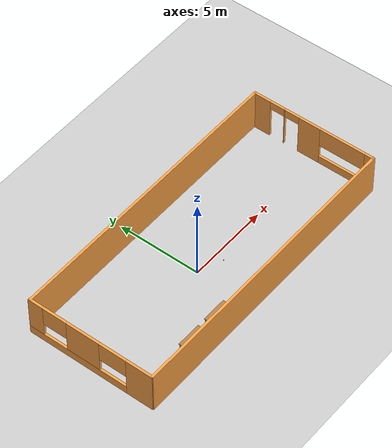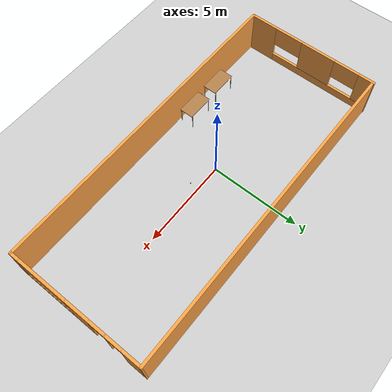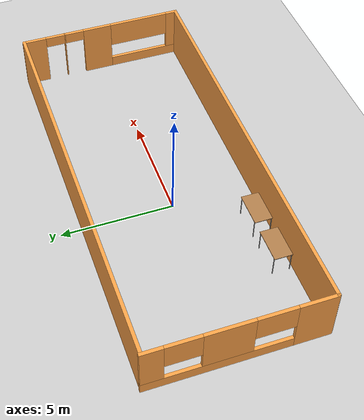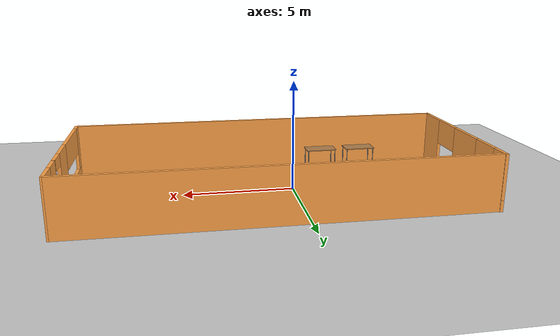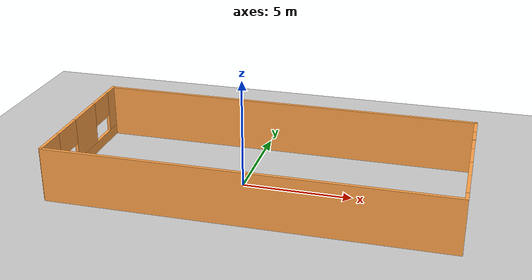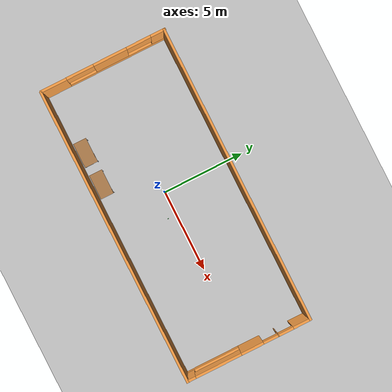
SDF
<sdf version="1.7">
 <world name="default">
  <light name="sun" type="directional">
   <pose>0 0 10 0 -0 0</pose>
   <diffuse>0.8 0.8 0.8 1</diffuse>
   <specular>0.1 0.1 0.1 1</specular>
   <attenuation>
    <range>1000</range>
    <constant>0.9</constant>
    <linear>0.01</linear>
    <quadratic>0.001</quadratic>
   </attenuation>
   <direction>-0.5 0.5 -1</direction>
   <spot><inner_angle>0</inner_angle><outer_angle>0</outer_angle><falloff>0</falloff></spot>
  </light>
  <model name="ground_plane">
   <static>1</static>
   <link name="link">
    <collision name="collision">
     <geometry><plane><normal>0 0 1</normal><size>100 100</size></plane></geometry>
     <surface><friction><ode><mu>100</mu><mu2>50</mu2></ode></friction></surface>
    </collision>
    <visual name="visual">
     <cast_shadows>0</cast_shadows>
     <geometry><plane><normal>0 0 1</normal><size>100 100</size></plane></geometry>
     <material>
      <script><uri>file://media/materials/scripts/gazebo.material</uri><name>Gazebo/Grey</name></script>
     </material>
    </visual>
   </link>
  </model>
  <gravity>0 0 -9.8</gravity>
  <magnetic_field>6e-06 2.3e-05 -4.2e-05</magnetic_field>
  <atmosphere type="adiabatic"/>
  <physics name="default_physics" default="0" type="ode">
   <max_step_size>0.001</max_step_size>
   <real_time_factor>1</real_time_factor>
   <real_time_update_rate>1000</real_time_update_rate>
  </physics>
  <scene><ambient>0.4 0.4 0.4 1</ambient><background>0.7 0.7 0.7 1</background><shadows>1</shadows></scene>
  <spherical_coordinates>
   <surface_model>EARTH_WGS84</surface_model>
   <latitude_deg>0</latitude_deg>
   <longitude_deg>0</longitude_deg>
   <elevation>0</elevation>
   <heading_deg>0</heading_deg>
  </spherical_coordinates>
  <audio><device>default</device></audio>
  <model name="green_ball">
   <link name="link">
    <inertial>
     <mass>0.02</mass>
     <inertia><ixx>7.2e-06</ixx><ixy>0</ixy><ixz>0</ixz><iyy>7.2e-06</iyy><iyz>0</iyz><izz>7.2e-06</izz></inertia>
    </inertial>
    <visual name="visual">
     <geometry><sphere><radius>0.03</radius></sphere></geometry>
     <material>
      <script><name>Gazebo/Green</name><uri>file://media/materials/scripts/gazebo.material</uri></script>
      <shader type="pixel"><normal_map>__default__</normal_map></shader>
      <ambient>0 1 0 1</ambient>
      <diffuse>0 1 0 1</diffuse>
      <specular>0.1 0.1 0.1 1</specular>
      <emissive>0 0 0 1</emissive>
     </material>
    </visual>
    <collision name="collision">
     <geometry><sphere><radius>0.03</radius></sphere></geometry>
     <surface>
      <friction>
       <ode><mu>1</mu><mu2>1</mu2><fdir1>0 0 0</fdir1><slip1>0</slip1><slip2>0</slip2></ode>
       <torsional>
        <coefficient>1</coefficient>
        <patch_radius>0</patch_radius>
        <surface_radius>0</surface_radius>
        <use_patch_radius>1</use_patch_radius>
        <ode><slip>0</slip></ode>
       </torsional>
      </friction>
      <bounce><restitution_coefficient>0</restitution_coefficient><threshold>1e+06</threshold></bounce>
      <contact>
       <collide_without_contact>0</collide_without_contact>
       <collide_without_contact_bitmask>1</collide_without_contact_bitmask>
       <collide_bitmask>1</collide_bitmask>
       <ode>
        <soft_cfm>0</soft_cfm>
        <soft_erp>0.2</soft_erp>
        <kp>1e+13</kp>
        <kd>1</kd>
        <max_vel>0.01</max_vel>
        <min_depth>0</min_depth>
       </ode>
       <bullet>
        <split_impulse>1</split_impulse>
        <split_impulse_penetration_threshold>-0.01</split_impulse_penetration_threshold>
        <soft_cfm>0</soft_cfm>
        <soft_erp>0.2</soft_erp>
        <kp>1e+13</kp>
        <kd>1</kd>
       </bullet>
      </contact>
     </surface>
    </collision>
   </link>
   <static>0</static>
   <pose>1.46921 -0.509175 0.03 0 -0 0</pose>
  </model>
  <model name="green_ball">
   <link name="link">
    <inertial>
     <mass>0.02</mass>
     <inertia><ixx>7.2e-06</ixx><ixy>0</ixy><ixz>0</ixz><iyy>7.2e-06</iyy><iyz>0</iyz><izz>7.2e-06</izz></inertia>
    </inertial>
    <visual name="visual">
     <geometry><sphere><radius>0.03</radius></sphere></geometry>
     <material>
      <script><name>Gazebo/Green</name><uri>file://media/materials/scripts/gazebo.material</uri></script>
      <shader type="pixel"><normal_map>__default__</normal_map></shader>
      <ambient>0 1 0 1</ambient>
      <diffuse>0 1 0 1</diffuse>
      <specular>0.1 0.1 0.1 1</specular>
      <emissive>0 0 0 1</emissive>
     </material>
    </visual>
    <collision name="collision">
     <geometry><sphere><radius>0.03</radius></sphere></geometry>
     <surface>
      <friction>
       <ode><mu>1</mu><mu2>1</mu2><fdir1>0 0 0</fdir1><slip1>0</slip1><slip2>0</slip2></ode>
       <torsional>
        <coefficient>1</coefficient>
        <patch_radius>0</patch_radius>
        <surface_radius>0</surface_radius>
        <use_patch_radius>1</use_patch_radius>
        <ode><slip>0</slip></ode>
       </torsional>
      </friction>
      <bounce><restitution_coefficient>0</restitution_coefficient><threshold>1e+06</threshold></bounce>
      <contact>
       <collide_without_contact>0</collide_without_contact>
       <collide_without_contact_bitmask>1</collide_without_contact_bitmask>
       <collide_bitmask>1</collide_bitmask>
       <ode>
        <soft_cfm>0</soft_cfm>
        <soft_erp>0.2</soft_erp>
        <kp>1e+13</kp>
        <kd>1</kd>
        <max_vel>0.01</max_vel>
        <min_depth>0</min_depth>
       </ode>
       <bullet>
        <split_impulse>1</split_impulse>
        <split_impulse_penetration_threshold>-0.01</split_impulse_penetration_threshold>
        <soft_cfm>0</soft_cfm>
        <soft_erp>0.2</soft_erp>
        <kp>1e+13</kp>
        <kd>1</kd>
       </bullet>
      </contact>
     </surface>
    </collision>
   </link>
   <static>0</static>
   <pose>1.46921 -0.509175 0.03 0 -0 0</pose>
  </model>
  <model name="green_ball">
   <link name="link">
    <inertial>
     <mass>0.02</mass>
     <inertia><ixx>7.2e-06</ixx><ixy>0</ixy><ixz>0</ixz><iyy>7.2e-06</iyy><iyz>0</iyz><izz>7.2e-06</izz></inertia>
    </inertial>
    <visual name="visual">
     <geometry><sphere><radius>0.03</radius></sphere></geometry>
     <material>
      <script><name>Gazebo/Green</name><uri>file://media/materials/scripts/gazebo.material</uri></script>
      <shader type="pixel"><normal_map>__default__</normal_map></shader>
      <ambient>0 1 0 1</ambient>
      <diffuse>0 1 0 1</diffuse>
      <specular>0.1 0.1 0.1 1</specular>
      <emissive>0 0 0 1</emissive>
     </material>
    </visual>
    <collision name="collision">
     <geometry><sphere><radius>0.03</radius></sphere></geometry>
     <surface>
      <friction>
       <ode><mu>1</mu><mu2>1</mu2><fdir1>0 0 0</fdir1><slip1>0</slip1><slip2>0</slip2></ode>
       <torsional>
        <coefficient>1</coefficient>
        <patch_radius>0</patch_radius>
        <surface_radius>0</surface_radius>
        <use_patch_radius>1</use_patch_radius>
        <ode><slip>0</slip></ode>
       </torsional>
      </friction>
      <bounce><restitution_coefficient>0</restitution_coefficient><threshold>1e+06</threshold></bounce>
      <contact>
       <collide_without_contact>0</collide_without_contact>
       <collide_without_contact_bitmask>1</collide_without_contact_bitmask>
       <collide_bitmask>1</collide_bitmask>
       <ode>
        <soft_cfm>0</soft_cfm>
        <soft_erp>0.2</soft_erp>
        <kp>1e+13</kp>
        <kd>1</kd>
        <max_vel>0.01</max_vel>
        <min_depth>0</min_depth>
       </ode>
       <bullet>
        <split_impulse>1</split_impulse>
        <split_impulse_penetration_threshold>-0.01</split_impulse_penetration_threshold>
        <soft_cfm>0</soft_cfm>
        <soft_erp>0.2</soft_erp>
        <kp>1e+13</kp>
        <kd>1</kd>
       </bullet>
      </contact>
     </surface>
    </collision>
   </link>
   <static>0</static>
   <pose>1.46921 -0.509175 0.03 0 -0 0</pose>
  </model>
  <model name="green_ball">
   <link name="link">
    <inertial>
     <mass>0.02</mass>
     <inertia><ixx>7.2e-06</ixx><ixy>0</ixy><ixz>0</ixz><iyy>7.2e-06</iyy><iyz>0</iyz><izz>7.2e-06</izz></inertia>
    </inertial>
    <visual name="visual">
     <geometry><sphere><radius>0.03</radius></sphere></geometry>
     <material>
      <script><name>Gazebo/Green</name><uri>file://media/materials/scripts/gazebo.material</uri></script>
      <shader type="pixel"><normal_map>__default__</normal_map></shader>
      <ambient>0 1 0 1</ambient>
      <diffuse>0 1 0 1</diffuse>
      <specular>0.1 0.1 0.1 1</specular>
      <emissive>0 0 0 1</emissive>
     </material>
    </visual>
    <collision name="collision">
     <geometry><sphere><radius>0.03</radius></sphere></geometry>
     <surface>
      <friction>
       <ode><mu>1</mu><mu2>1</mu2><fdir1>0 0 0</fdir1><slip1>0</slip1><slip2>0</slip2></ode>
       <torsional>
        <coefficient>1</coefficient>
        <patch_radius>0</patch_radius>
        <surface_radius>0</surface_radius>
        <use_patch_radius>1</use_patch_radius>
        <ode><slip>0</slip></ode>
       </torsional>
      </friction>
      <bounce><restitution_coefficient>0</restitution_coefficient><threshold>1e+06</threshold></bounce>
      <contact>
       <collide_without_contact>0</collide_without_contact>
       <collide_without_contact_bitmask>1</collide_without_contact_bitmask>
       <collide_bitmask>1</collide_bitmask>
       <ode>
        <soft_cfm>0</soft_cfm>
        <soft_erp>0.2</soft_erp>
        <kp>1e+13</kp>
        <kd>1</kd>
        <max_vel>0.01</max_vel>
        <min_depth>0</min_depth>
       </ode>
       <bullet>
        <split_impulse>1</split_impulse>
        <split_impulse_penetration_threshold>-0.01</split_impulse_penetration_threshold>
        <soft_cfm>0</soft_cfm>
        <soft_erp>0.2</soft_erp>
        <kp>1e+13</kp>
        <kd>1</kd>
       </bullet>
      </contact>
     </surface>
    </collision>
   </link>
   <static>0</static>
   <pose>1.46921 -0.509175 0.03 0 -0 0</pose>
  </model>
  <light name="user_directional_light_0" type="directional">
   <pose>45.8584 39.5951 1 0 -0 0</pose>
   <diffuse>0.5 0.5 0.5 1</diffuse>
   <specular>0.1 0.1 0.1 1</specular>
   <direction>0.1 0.1 -0.9</direction>
   <attenuation>
    <range>20</range>
    <constant>0.5</constant>
    <linear>0.01</linear>
    <quadratic>0.001</quadratic>
   </attenuation>
   <spot><inner_angle>0</inner_angle><outer_angle>0</outer_angle><falloff>0</falloff></spot>
  </light>
  <light name="user_directional_light_1" type="directional">
   <pose>38.4575 -41.9597 1 0 -0 0</pose>
   <diffuse>0.5 0.5 0.5 1</diffuse>
   <specular>0.1 0.1 0.1 1</specular>
   <direction>0.1 0.1 -0.9</direction>
   <attenuation>
    <range>20</range>
    <constant>0.5</constant>
    <linear>0.01</linear>
    <quadratic>0.001</quadratic>
   </attenuation>
   <spot><inner_angle>0</inner_angle><outer_angle>0</outer_angle><falloff>0</falloff></spot>
  </light>
  <light name="user_directional_light_2" type="directional">
   <pose>-12.7105 -27.0796 1 0 -0 0</pose>
   <diffuse>0.5 0.5 0.5 1</diffuse>
   <specular>0.1 0.1 0.1 1</specular>
   <direction>0.1 0.1 -0.9</direction>
   <attenuation>
    <range>20</range>
    <constant>0.5</constant>
    <linear>0.01</linear>
    <quadratic>0.001</quadratic>
   </attenuation>
   <spot><inner_angle>0</inner_angle><outer_angle>0</outer_angle><falloff>0</falloff></spot>
  </light>
  <light name="user_directional_light_3" type="directional">
   <pose>-14.2214 14.882 1 0 -0 0</pose>
   <diffuse>0.5 0.5 0.5 1</diffuse>
   <specular>0.1 0.1 0.1 1</specular>
   <direction>0.1 0.1 -0.9</direction>
   <attenuation>
    <range>20</range>
    <constant>0.5</constant>
    <linear>0.01</linear>
    <quadratic>0.001</quadratic>
   </attenuation>
   <spot><inner_angle>0</inner_angle><outer_angle>0</outer_angle><falloff>0</falloff></spot>
  </light>
  <light name="user_directional_light_4" type="directional">
   <pose>13.001 10.7496 1 0 -0 0</pose>
   <diffuse>0.5 0.5 0.5 1</diffuse>
   <specular>0.1 0.1 0.1 1</specular>
   <direction>0.1 0.1 -0.9</direction>
   <attenuation>
    <range>20</range>
    <constant>0.5</constant>
    <linear>0.01</linear>
    <quadratic>0.001</quadratic>
   </attenuation>
   <spot><inner_angle>0</inner_angle><outer_angle>0</outer_angle><falloff>0</falloff></spot>
  </light>
  <light name="user_directional_light_5" type="directional">
   <pose>15.4043 -13.9342 1 0 -0 0</pose>
   <diffuse>0.5 0.5 0.5 1</diffuse>
   <specular>0.1 0.1 0.1 1</specular>
   <direction>0.1 0.1 -0.9</direction>
   <attenuation>
    <range>20</range>
    <constant>0.5</constant>
    <linear>0.01</linear>
    <quadratic>0.001</quadratic>
   </attenuation>
   <spot><inner_angle>0</inner_angle><outer_angle>0</outer_angle><falloff>0</falloff></spot>
  </light>
  <model name="table">
   <static>1</static>
   <link name="link">
    <collision name="surface">
     <pose>0 0 1 0 -0 0</pose>
     <geometry><box><size>1.5 0.8 0.03</size></box></geometry>
     <surface><friction><ode><mu>0.6</mu><mu2>0.6</mu2></ode></friction></surface>
    </collision>
    <visual name="visual1">
     <pose>0 0 1 0 -0 0</pose>
     <geometry><box><size>1.5 0.8 0.03</size></box></geometry>
     <material>
      <script><uri>file://media/materials/scripts/gazebo.material</uri><name>Gazebo/Wood</name></script>
     </material>
    </visual>
    <collision name="front_left_leg">
     <pose>0.68 0.38 0.5 0 -0 0</pose>
     <geometry><cylinder><radius>0.02</radius><length>1</length></cylinder></geometry>
    </collision>
    <visual name="front_left_leg">
     <pose>0.68 0.38 0.5 0 -0 0</pose>
     <geometry><cylinder><radius>0.02</radius><length>1</length></cylinder></geometry>
     <material>
      <script><uri>file://media/materials/scripts/gazebo.material</uri><name>Gazebo/Grey</name></script>
     </material>
    </visual>
    <collision name="front_right_leg">
     <pose>0.68 -0.38 0.5 0 -0 0</pose>
     <geometry><cylinder><radius>0.02</radius><length>1</length></cylinder></geometry>
    </collision>
    <visual name="front_right_leg">
     <pose>0.68 -0.38 0.5 0 -0 0</pose>
     <geometry><cylinder><radius>0.02</radius><length>1</length></cylinder></geometry>
     <material>
      <script><uri>file://media/materials/scripts/gazebo.material</uri><name>Gazebo/Grey</name></script>
     </material>
    </visual>
    <collision name="back_right_leg">
     <pose>-0.68 -0.38 0.5 0 -0 0</pose>
     <geometry><cylinder><radius>0.02</radius><length>1</length></cylinder></geometry>
    </collision>
    <visual name="back_right_leg">
     <pose>-0.68 -0.38 0.5 0 -0 0</pose>
     <geometry><cylinder><radius>0.02</radius><length>1</length></cylinder></geometry>
     <material>
      <script><uri>file://media/materials/scripts/gazebo.material</uri><name>Gazebo/Grey</name></script>
     </material>
    </visual>
    <collision name="back_left_leg">
     <pose>-0.68 0.38 0.5 0 -0 0</pose>
     <geometry><cylinder><radius>0.02</radius><length>1</length></cylinder></geometry>
    </collision>
    <visual name="back_left_leg">
     <pose>-0.68 0.38 0.5 0 -0 0</pose>
     <geometry><cylinder><radius>0.02</radius><length>1</length></cylinder></geometry>
     <material>
      <script><uri>file://media/materials/scripts/gazebo.material</uri><name>Gazebo/Grey</name></script>
     </material>
    </visual>
   </link>
   <pose>-4 -3 0 0 -0 0</pose>
  </model>
  <model name="table_0">
   <static>1</static>
   <link name="link">
    <collision name="surface">
     <pose>0 0 1 0 -0 0</pose>
     <geometry><box><size>1.5 0.8 0.03</size></box></geometry>
     <surface><friction><ode><mu>0.6</mu><mu2>0.6</mu2></ode></friction></surface>
    </collision>
    <visual name="visual1">
     <pose>0 0 1 0 -0 0</pose>
     <geometry><box><size>1.5 0.8 0.03</size></box></geometry>
     <material>
      <script><uri>file://media/materials/scripts/gazebo.material</uri><name>Gazebo/Wood</name></script>
     </material>
    </visual>
    <collision name="front_left_leg">
     <pose>0.68 0.38 0.5 0 -0 0</pose>
     <geometry><cylinder><radius>0.02</radius><length>1</length></cylinder></geometry>
    </collision>
    <visual name="front_left_leg">
     <pose>0.68 0.38 0.5 0 -0 0</pose>
     <geometry><cylinder><radius>0.02</radius><length>1</length></cylinder></geometry>
     <material>
      <script><uri>file://media/materials/scripts/gazebo.material</uri><name>Gazebo/Grey</name></script>
     </material>
    </visual>
    <collision name="front_right_leg">
     <pose>0.68 -0.38 0.5 0 -0 0</pose>
     <geometry><cylinder><radius>0.02</radius><length>1</length></cylinder></geometry>
    </collision>
    <visual name="front_right_leg">
     <pose>0.68 -0.38 0.5 0 -0 0</pose>
     <geometry><cylinder><radius>0.02</radius><length>1</length></cylinder></geometry>
     <material>
      <script><uri>file://media/materials/scripts/gazebo.material</uri><name>Gazebo/Grey</name></script>
     </material>
    </visual>
    <collision name="back_right_leg">
     <pose>-0.68 -0.38 0.5 0 -0 0</pose>
     <geometry><cylinder><radius>0.02</radius><length>1</length></cylinder></geometry>
    </collision>
    <visual name="back_right_leg">
     <pose>-0.68 -0.38 0.5 0 -0 0</pose>
     <geometry><cylinder><radius>0.02</radius><length>1</length></cylinder></geometry>
     <material>
      <script><uri>file://media/materials/scripts/gazebo.material</uri><name>Gazebo/Grey</name></script>
     </material>
    </visual>
    <collision name="back_left_leg">
     <pose>-0.68 0.38 0.5 0 -0 0</pose>
     <geometry><cylinder><radius>0.02</radius><length>1</length></cylinder></geometry>
    </collision>
    <visual name="back_left_leg">
     <pose>-0.68 0.38 0.5 0 -0 0</pose>
     <geometry><cylinder><radius>0.02</radius><length>1</length></cylinder></geometry>
     <material>
      <script><uri>file://media/materials/scripts/gazebo.material</uri><name>Gazebo/Grey</name></script>
     </material>
    </visual>
   </link>
   <pose>-2 -3 0 0 -0 0</pose>
  </model>
  <model name="Lab">
   <pose>0.979661 0.227537 0 0 -0 0</pose>
   <link name="Wall_13">
    <pose>-8.94691 0.02332 0 0 -0 1.5708</pose>
    <visual name="Wall_13_Visual_0">
     <pose>-3.06718 0 1.25 0 -0 0</pose>
     <geometry><box><size>1.61563 0.15 2.5</size></box></geometry>
     <material>
      <script><uri>file://media/materials/scripts/gazebo.material</uri><name>Gazebo/Grey</name></script>
      <ambient>1 0.639216 0.282353 1</ambient>
     </material>
     <meta><layer>0</layer></meta>
    </visual>
    <collision name="Wall_13_Collision_0">
     <geometry><box><size>1.61563 0.15 2.5</size></box></geometry>
     <pose>-3.06718 0 1.25 0 -0 0</pose>
    </collision>
    <visual name="Wall_13_Visual_1">
     <pose>0.807816 0 0.25 0 -0 0</pose>
     <geometry><box><size>6.13437 0.15 0.5</size></box></geometry>
     <material>
      <script><uri>file://media/materials/scripts/gazebo.material</uri><name>Gazebo/Grey</name></script>
      <ambient>1 0.639216 0.282353 1</ambient>
     </material>
     <meta><layer>0</layer></meta>
    </visual>
    <collision name="Wall_13_Collision_1">
     <geometry><box><size>6.13437 0.15 0.5</size></box></geometry>
     <pose>0.807816 0 0.25 0 -0 0</pose>
    </collision>
    <visual name="Wall_13_Visual_2">
     <pose>0.429864 0 1.5 0 -0 0</pose>
     <geometry><box><size>2.05519 0.15 2</size></box></geometry>
     <material>
      <script><uri>file://media/materials/scripts/gazebo.material</uri><name>Gazebo/Grey</name></script>
      <ambient>1 0.639216 0.282353 1</ambient>
     </material>
     <meta><layer>0</layer></meta>
    </visual>
    <collision name="Wall_13_Collision_2">
     <geometry><box><size>2.05519 0.15 2</size></box></geometry>
     <pose>0.429864 0 1.5 0 -0 0</pose>
    </collision>
    <visual name="Wall_13_Visual_3">
     <pose>3.406 0 1.5 0 -0 0</pose>
     <geometry><box><size>0.937999 0.15 2</size></box></geometry>
     <material>
      <script><uri>file://media/materials/scripts/gazebo.material</uri><name>Gazebo/Grey</name></script>
      <ambient>1 0.639216 0.282353 1</ambient>
     </material>
     <meta><layer>0</layer></meta>
    </visual>
    <collision name="Wall_13_Collision_3">
     <geometry><box><size>0.937999 0.15 2</size></box></geometry>
     <pose>3.406 0 1.5 0 -0 0</pose>
    </collision>
    <visual name="Wall_13_Visual_4">
     <pose>-1.42855 0 1.9 0 -0 0</pose>
     <geometry><box><size>1.66164 0.15 1.2</size></box></geometry>
     <material>
      <script><uri>file://media/materials/scripts/gazebo.material</uri><name>Gazebo/Grey</name></script>
      <ambient>1 0.639216 0.282353 1</ambient>
     </material>
     <meta><layer>0</layer></meta>
    </visual>
    <collision name="Wall_13_Collision_4">
     <geometry><box><size>1.66164 0.15 1.2</size></box></geometry>
     <pose>-1.42855 0 1.9 0 -0 0</pose>
    </collision>
    <visual name="Wall_13_Visual_5">
     <pose>2.19723 0 1.9 0 -0 0</pose>
     <geometry><box><size>1.47954 0.15 1.2</size></box></geometry>
     <material>
      <script><uri>file://media/materials/scripts/gazebo.material</uri><name>Gazebo/Grey</name></script>
      <ambient>1 0.639216 0.282353 1</ambient>
     </material>
     <meta><layer>0</layer></meta>
    </visual>
    <collision name="Wall_13_Collision_5">
     <geometry><box><size>1.47954 0.15 1.2</size></box></geometry>
     <pose>2.19723 0 1.9 0 -0 0</pose>
    </collision>
   </link>
   <link name="Wall_14">
    <collision name="Wall_14_Collision">
     <geometry><box><size>18.0205 0.15 2.5</size></box></geometry>
     <pose>0 0 1.25 0 -0 0</pose>
    </collision>
    <visual name="Wall_14_Visual">
     <pose>0 0 1.25 0 -0 0</pose>
     <geometry><box><size>18.0205 0.15 2.5</size></box></geometry>
     <material>
      <script><uri>file://media/materials/scripts/gazebo.material</uri><name>Gazebo/Grey</name></script>
      <ambient>1 0.639216 0.282353 1</ambient>
     </material>
     <meta><layer>0</layer></meta>
    </visual>
    <pose>0.011581 3.78834 0 0 -0 -0.001305</pose>
   </link>
   <link name="Wall_17">
    <pose>8.94675 -0.02332 0 0 -0 -1.5708</pose>
    <visual name="Wall_17_Visual_0">
     <pose>-3.31432 0 1.25 0 -0 0</pose>
     <geometry><box><size>1.12137 0.15 2.5</size></box></geometry>
     <material>
      <script><uri>file://media/materials/scripts/gazebo.material</uri><name>Gazebo/Grey</name></script>
      <ambient>1 0.639216 0.282353 1</ambient>
     </material>
     <meta><layer>0</layer></meta>
    </visual>
    <collision name="Wall_17_Collision_0">
     <geometry><box><size>1.12137 0.15 2.5</size></box></geometry>
     <pose>-3.31432 0 1.25 0 -0 0</pose>
    </collision>
    <visual name="Wall_17_Visual_1">
     <pose>-1.83098 0 1.25 0 -0 0</pose>
     <geometry><box><size>0.045299 0.15 2.5</size></box></geometry>
     <material>
      <script><uri>file://media/materials/scripts/gazebo.material</uri><name>Gazebo/Grey</name></script>
      <ambient>1 0.639216 0.282353 1</ambient>
     </material>
     <meta><layer>0</layer></meta>
    </visual>
    <collision name="Wall_17_Collision_1">
     <geometry><box><size>0.045299 0.15 2.5</size></box></geometry>
     <pose>-1.83098 0 1.25 0 -0 0</pose>
    </collision>
    <visual name="Wall_17_Visual_2">
     <pose>-0.224427 0 1.25 0 -0 0</pose>
     <geometry><box><size>1.36781 0.15 2.5</size></box></geometry>
     <material>
      <script><uri>file://media/materials/scripts/gazebo.material</uri><name>Gazebo/Grey</name></script>
      <ambient>1 0.639216 0.282353 1</ambient>
     </material>
     <meta><layer>0</layer></meta>
    </visual>
    <collision name="Wall_17_Collision_2">
     <geometry><box><size>1.36781 0.15 2.5</size></box></geometry>
     <pose>-0.224427 0 1.25 0 -0 0</pose>
    </collision>
    <visual name="Wall_17_Visual_3">
     <pose>2.16724 0 0.25 0 -0 0</pose>
     <geometry><box><size>3.41552 0.15 0.5</size></box></geometry>
     <material>
      <script><uri>file://media/materials/scripts/gazebo.material</uri><name>Gazebo/Grey</name></script>
      <ambient>1 0.639216 0.282353 1</ambient>
     </material>
     <meta><layer>0</layer></meta>
    </visual>
    <collision name="Wall_17_Collision_3">
     <geometry><box><size>3.41552 0.15 0.5</size></box></geometry>
     <pose>2.16724 0 0.25 0 -0 0</pose>
    </collision>
    <visual name="Wall_17_Visual_4">
     <pose>3.58047 0 1.5 0 -0 0</pose>
     <geometry><box><size>0.58905 0.15 2</size></box></geometry>
     <material>
      <script><uri>file://media/materials/scripts/gazebo.material</uri><name>Gazebo/Grey</name></script>
      <ambient>1 0.639216 0.282353 1</ambient>
     </material>
     <meta><layer>0</layer></meta>
    </visual>
    <collision name="Wall_17_Collision_4">
     <geometry><box><size>0.58905 0.15 2</size></box></geometry>
     <pose>3.58047 0 1.5 0 -0 0</pose>
    </collision>
    <visual name="Wall_17_Visual_5">
     <pose>1.87271 0 1.9 0 -0 0</pose>
     <geometry><box><size>2.82647 0.15 1.2</size></box></geometry>
     <material>
      <script><uri>file://media/materials/scripts/gazebo.material</uri><name>Gazebo/Grey</name></script>
      <ambient>1 0.639216 0.282353 1</ambient>
     </material>
     <meta><layer>0</layer></meta>
    </visual>
    <collision name="Wall_17_Collision_5">
     <geometry><box><size>2.82647 0.15 1.2</size></box></geometry>
     <pose>1.87271 0 1.9 0 -0 0</pose>
    </collision>
    <visual name="Wall_17_Visual_6">
     <pose>-2.30363 0 2.25 0 -0 0</pose>
     <geometry><box><size>0.9 0.15 0.5</size></box></geometry>
     <material>
      <script><uri>file://media/materials/scripts/gazebo.material</uri><name>Gazebo/Grey</name></script>
      <ambient>1 0.639216 0.282353 1</ambient>
     </material>
     <meta><layer>0</layer></meta>
    </visual>
    <collision name="Wall_17_Collision_6">
     <geometry><box><size>0.9 0.15 0.5</size></box></geometry>
     <pose>-2.30363 0 2.25 0 -0 0</pose>
    </collision>
    <visual name="Wall_17_Visual_7">
     <pose>-1.35833 0 2.25 0 -0 0</pose>
     <geometry><box><size>0.9 0.15 0.5</size></box></geometry>
     <material>
      <script><uri>file://media/materials/scripts/gazebo.material</uri><name>Gazebo/Grey</name></script>
      <ambient>1 0.639216 0.282353 1</ambient>
     </material>
     <meta><layer>0</layer></meta>
    </visual>
    <collision name="Wall_17_Collision_7">
     <geometry><box><size>0.9 0.15 0.5</size></box></geometry>
     <pose>-1.35833 0 2.25 0 -0 0</pose>
    </collision>
   </link>
   <link name="Wall_20">
    <collision name="Wall_20_Collision">
     <geometry><box><size>18 0.15 2.5</size></box></geometry>
     <pose>0 0 1.25 0 -0 0</pose>
    </collision>
    <visual name="Wall_20_Visual">
     <pose>0 0 1.25 0 -0 0</pose>
     <geometry><box><size>18 0.15 2.5</size></box></geometry>
     <material>
      <script><uri>file://media/materials/scripts/gazebo.material</uri><name>Gazebo/Grey</name></script>
      <ambient>1 0.639216 0.282353 1</ambient>
     </material>
     <meta><layer>0</layer></meta>
    </visual>
    <pose>0.02175 -3.82332 0 0 -0 3.14159</pose>
   </link>
   <static>1</static>
  </model>
 </world>
</sdf>
